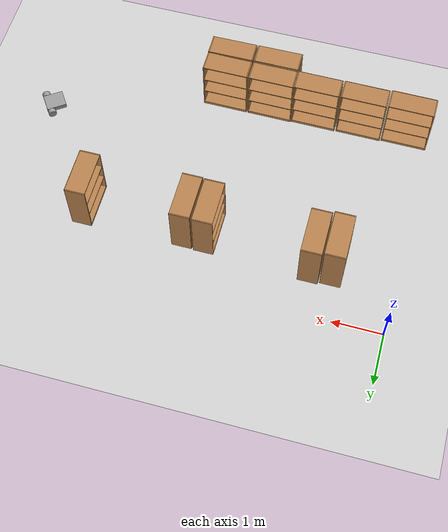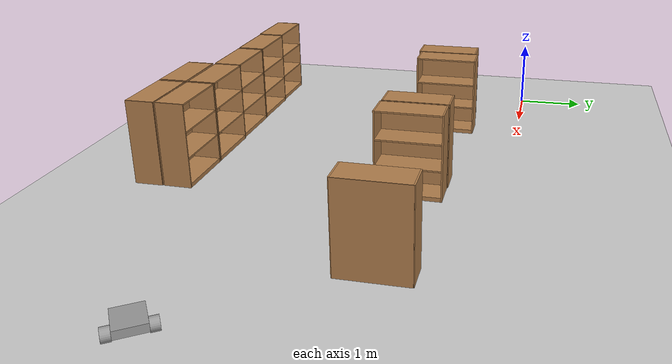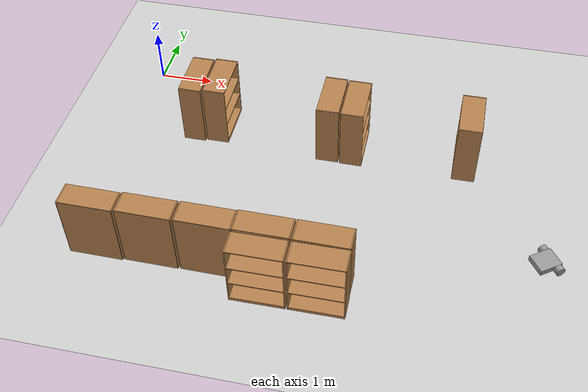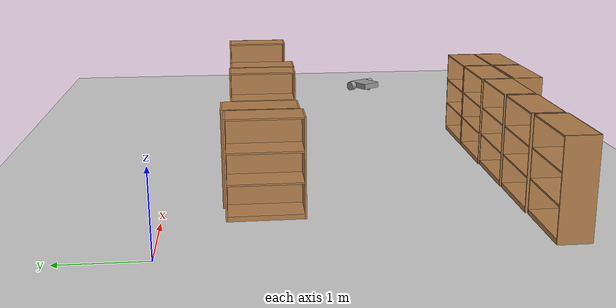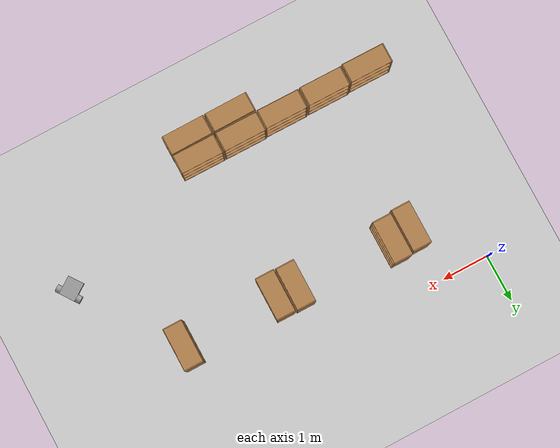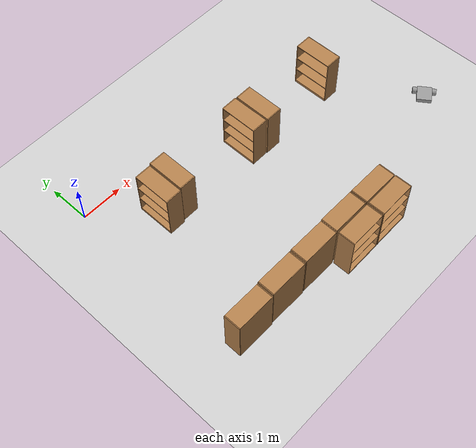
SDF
<sdf version="1.6">
 <world name="default">
  <model name="ground_plane">
   <static>1</static>
   <link name="link">
    <collision name="collision">
     <geometry><plane><normal>0 0 1</normal><size>100 100</size></plane></geometry>
     <surface>
      <contact><collide_bitmask>65535</collide_bitmask></contact>
      <friction><ode><mu>100</mu><mu2>50</mu2></ode></friction>
     </surface>
    </collision>
    <visual name="visual">
     <cast_shadows>0</cast_shadows>
     <geometry><plane><normal>0 0 1</normal><size>100 100</size></plane></geometry>
     <material>
      <script><uri>file://media/materials/scripts/gazebo.material</uri><name>Gazebo/Grey</name></script>
     </material>
    </visual>
   </link>
  </model>
  <model name="CasterWheelRobot">
   <link name="link_2">
    <pose>0.03 0 0.025 0 -0 0</pose>
    <inertial>
     <mass>0.0155432</mass>
     <inertia>
      <ixx>0.0001924</ixx>
      <ixy>0</ixy>
      <ixz>0</ixz>
      <iyy>0.0002189</iyy>
      <iyz>0</iyz>
      <izz>0.00038243</izz>
     </inertia>
    </inertial>
    <visual name="visual">
     <geometry><box><size>0.4 0.35 0.1</size></box></geometry>
     <material>
      <lighting>1</lighting>
      <script><uri>file://media/materials/scripts/gazebo.material</uri><name>Gazebo/Grey</name></script>
      <shader type="pixel"><normal_map>__default__</normal_map></shader>
      <ambient>0.3 0.3 0.3 1</ambient>
      <diffuse>0.7 0.7 0.7 1</diffuse>
      <specular>0.01 0.01 0.01 1</specular>
      <emissive>0 0 0 1</emissive>
     </material>
    </visual>
    <collision name="collision">
     <geometry><box><size>0.4 0.35 0.1</size></box></geometry>
     <surface>
      <friction>
       <ode><mu>1</mu><mu2>1</mu2><fdir1>0 0 0</fdir1><slip1>0</slip1><slip2>0</slip2></ode>
       <torsional>
        <coefficient>1</coefficient>
        <patch_radius>0</patch_radius>
        <surface_radius>0</surface_radius>
        <use_patch_radius>1</use_patch_radius>
        <ode><slip>0</slip></ode>
       </torsional>
      </friction>
      <bounce><restitution_coefficient>0</restitution_coefficient><threshold>1e+06</threshold></bounce>
      <contact>
       <collide_without_contact>0</collide_without_contact>
       <collide_without_contact_bitmask>1</collide_without_contact_bitmask>
       <collide_bitmask>1</collide_bitmask>
       <ode>
        <soft_cfm>0</soft_cfm>
        <soft_erp>0.2</soft_erp>
        <kp>1e+13</kp>
        <kd>1</kd>
        <max_vel>0.01</max_vel>
        <min_depth>0</min_depth>
       </ode>
       <bullet>
        <split_impulse>1</split_impulse>
        <split_impulse_penetration_threshold>-0.01</split_impulse_penetration_threshold>
        <soft_cfm>0</soft_cfm>
        <soft_erp>0.2</soft_erp>
        <kp>1e+13</kp>
        <kd>1</kd>
       </bullet>
      </contact>
     </surface>
    </collision>
   </link>
   <link name="link_3">
    <pose>-0.09 -0.225013 0.005 1.5707 -0 0</pose>
    <inertial>
     <mass>1</mass>
     <inertia><ixx>0.145833</ixx><ixy>0</ixy><ixz>0</ixz><iyy>0.145833</iyy><iyz>0</iyz><izz>0.125</izz></inertia>
    </inertial>
    <visual name="visual">
     <geometry><cylinder><radius>0.08</radius><length>0.1</length></cylinder></geometry>
     <material>
      <lighting>1</lighting>
      <script><uri>file://media/materials/scripts/gazebo.material</uri><name>Gazebo/Grey</name></script>
      <shader type="pixel"><normal_map>__default__</normal_map></shader>
      <ambient>0.3 0.3 0.3 1</ambient>
      <diffuse>0.7 0.7 0.7 1</diffuse>
      <specular>0.01 0.01 0.01 1</specular>
      <emissive>0 0 0 1</emissive>
     </material>
    </visual>
    <collision name="collision">
     <geometry><cylinder><radius>0.08</radius><length>0.1</length></cylinder></geometry>
     <surface>
      <friction>
       <ode><mu>1</mu><mu2>1</mu2><fdir1>0 0 0</fdir1><slip1>0</slip1><slip2>0</slip2></ode>
       <torsional>
        <coefficient>1</coefficient>
        <patch_radius>0</patch_radius>
        <surface_radius>0</surface_radius>
        <use_patch_radius>1</use_patch_radius>
        <ode><slip>0</slip></ode>
       </torsional>
      </friction>
      <bounce><restitution_coefficient>0</restitution_coefficient><threshold>1e+06</threshold></bounce>
      <contact>
       <collide_without_contact>0</collide_without_contact>
       <collide_without_contact_bitmask>1</collide_without_contact_bitmask>
       <collide_bitmask>1</collide_bitmask>
       <ode>
        <soft_cfm>0</soft_cfm>
        <soft_erp>0.2</soft_erp>
        <kp>1e+13</kp>
        <kd>1</kd>
        <max_vel>0.01</max_vel>
        <min_depth>0</min_depth>
       </ode>
       <bullet>
        <split_impulse>1</split_impulse>
        <split_impulse_penetration_threshold>-0.01</split_impulse_penetration_threshold>
        <soft_cfm>0</soft_cfm>
        <soft_erp>0.2</soft_erp>
        <kp>1e+13</kp>
        <kd>1</kd>
       </bullet>
      </contact>
     </surface>
    </collision>
   </link>
   <link name="link_3_clone">
    <pose>-0.09 0.225008 0.005 -1.5707 0 0</pose>
    <inertial>
     <mass>1</mass>
     <inertia><ixx>0.145833</ixx><ixy>0</ixy><ixz>0</ixz><iyy>0.145833</iyy><iyz>0</iyz><izz>0.125</izz></inertia>
    </inertial>
    <visual name="visual">
     <geometry><cylinder><radius>0.08</radius><length>0.1</length></cylinder></geometry>
     <material>
      <lighting>1</lighting>
      <script><uri>file://media/materials/scripts/gazebo.material</uri><name>Gazebo/Grey</name></script>
      <shader type="pixel"><normal_map>__default__</normal_map></shader>
      <ambient>0.3 0.3 0.3 1</ambient>
      <diffuse>0.7 0.7 0.7 1</diffuse>
      <specular>0.01 0.01 0.01 1</specular>
      <emissive>0 0 0 1</emissive>
     </material>
    </visual>
    <collision name="collision">
     <geometry><cylinder><radius>0.08</radius><length>0.1</length></cylinder></geometry>
     <surface>
      <friction>
       <ode><mu>1</mu><mu2>1</mu2><fdir1>0 0 0</fdir1><slip1>0</slip1><slip2>0</slip2></ode>
       <torsional>
        <coefficient>1</coefficient>
        <patch_radius>0</patch_radius>
        <surface_radius>0</surface_radius>
        <use_patch_radius>1</use_patch_radius>
        <ode><slip>0</slip></ode>
       </torsional>
      </friction>
      <bounce><restitution_coefficient>0</restitution_coefficient><threshold>1e+06</threshold></bounce>
      <contact>
       <collide_without_contact>0</collide_without_contact>
       <collide_without_contact_bitmask>1</collide_without_contact_bitmask>
       <collide_bitmask>1</collide_bitmask>
       <ode>
        <soft_cfm>0</soft_cfm>
        <soft_erp>0.2</soft_erp>
        <kp>1e+13</kp>
        <kd>1</kd>
        <max_vel>0.01</max_vel>
        <min_depth>0</min_depth>
       </ode>
       <bullet>
        <split_impulse>1</split_impulse>
        <split_impulse_penetration_threshold>-0.01</split_impulse_penetration_threshold>
        <soft_cfm>0</soft_cfm>
        <soft_erp>0.2</soft_erp>
        <kp>1e+13</kp>
        <kd>1</kd>
       </bullet>
      </contact>
     </surface>
    </collision>
   </link>
   <link name="link_4">
    <pose>0.15 0 -0.035 0 -0 0</pose>
    <inertial>
     <mass>0.00336129</mass>
     <inertia>
      <ixx>7.54e-06</ixx>
      <ixy>0</ixy>
      <ixz>0</ixz>
      <iyy>7.54e-06</iyy>
      <iyz>0</iyz>
      <izz>7.54e-06</izz>
     </inertia>
    </inertial>
    <visual name="visual">
     <geometry><sphere><radius>0.04</radius></sphere></geometry>
     <material>
      <lighting>1</lighting>
      <script><uri>file://media/materials/scripts/gazebo.material</uri><name>Gazebo/Grey</name></script>
      <shader type="pixel"><normal_map>__default__</normal_map></shader>
      <ambient>0.3 0.3 0.3 1</ambient>
      <diffuse>0.7 0.7 0.7 1</diffuse>
      <specular>0.01 0.01 0.01 1</specular>
      <emissive>0 0 0 1</emissive>
     </material>
    </visual>
    <collision name="collision">
     <geometry><sphere><radius>0.04</radius></sphere></geometry>
     <surface>
      <friction>
       <ode><mu>1</mu><mu2>1</mu2><fdir1>0 0 0</fdir1><slip1>0</slip1><slip2>0</slip2></ode>
       <torsional>
        <coefficient>1</coefficient>
        <patch_radius>0</patch_radius>
        <surface_radius>0</surface_radius>
        <use_patch_radius>1</use_patch_radius>
        <ode><slip>0</slip></ode>
       </torsional>
      </friction>
      <bounce><restitution_coefficient>0</restitution_coefficient><threshold>1e+06</threshold></bounce>
      <contact>
       <collide_without_contact>0</collide_without_contact>
       <collide_without_contact_bitmask>1</collide_without_contact_bitmask>
       <collide_bitmask>1</collide_bitmask>
       <ode>
        <soft_cfm>0</soft_cfm>
        <soft_erp>0.2</soft_erp>
        <kp>1e+13</kp>
        <kd>1</kd>
        <max_vel>0.01</max_vel>
        <min_depth>0</min_depth>
       </ode>
       <bullet>
        <split_impulse>1</split_impulse>
        <split_impulse_penetration_threshold>-0.01</split_impulse_penetration_threshold>
        <soft_cfm>0</soft_cfm>
        <soft_erp>0.2</soft_erp>
        <kp>1e+13</kp>
        <kd>1</kd>
       </bullet>
      </contact>
     </surface>
    </collision>
   </link>
   <joint name="link_2_JOINT_10" type="ball">
    <parent>link_2</parent>
    <child>link_4</child>
    <physics>
     <ode><limit><cfm>0</cfm><erp>0.2</erp></limit><suspension><cfm>0</cfm><erp>0.2</erp></suspension></ode>
    </physics>
   </joint>
   <joint name="link_2_JOINT_8" type="revolute">
    <parent>link_2</parent>
    <child>link_3</child>
    <axis>
     <xyz>0 0 1</xyz>
     <use_parent_model_frame>0</use_parent_model_frame>
     <limit>
      <lower>-1.79769e+308</lower>
      <upper>1.79769e+308</upper>
      <effort>-1</effort>
      <velocity>-1</velocity>
     </limit>
     <dynamics>
      <spring_reference>0</spring_reference>
      <spring_stiffness>0</spring_stiffness>
      <damping>0</damping>
     </dynamics>
    </axis>
    <physics>
     <ode><limit><cfm>0</cfm><erp>0.2</erp></limit><suspension><cfm>0</cfm><erp>0.2</erp></suspension></ode>
    </physics>
   </joint>
   <joint name="link_2_JOINT_9" type="revolute">
    <parent>link_2</parent>
    <child>link_3_clone</child>
    <axis>
     <xyz>0 0 1</xyz>
     <use_parent_model_frame>0</use_parent_model_frame>
     <limit>
      <lower>-1.79769e+308</lower>
      <upper>1.79769e+308</upper>
      <effort>-1</effort>
      <velocity>-1</velocity>
     </limit>
     <dynamics>
      <spring_reference>0</spring_reference>
      <spring_stiffness>0</spring_stiffness>
      <damping>0</damping>
     </dynamics>
    </axis>
    <physics>
     <ode><limit><cfm>0</cfm><erp>0.2</erp></limit><suspension><cfm>0</cfm><erp>0.2</erp></suspension></ode>
    </physics>
   </joint>
   <static>0</static>
   <pose>7.64571 -3.31094 0.074993 5.9e-05 -4.4e-05 -2.53326</pose>
  </model>
  <model name="bookshelf_clone_38">
   <static>1</static>
   <link name="link">
    <inertial><mass>1</mass></inertial>
    <collision name="back">
     <pose>0 0.005 0.6 0 -0 0</pose>
     <geometry><box><size>0.9 0.01 1.2</size></box></geometry>
    </collision>
    <visual name="visual1">
     <pose>0 0.005 0.6 0 -0 0</pose>
     <geometry><box><size>0.9 0.01 1.2</size></box></geometry>
     <material>
      <script><uri>file://media/materials/scripts/gazebo.material</uri><name>Gazebo/Wood</name></script>
     </material>
    </visual>
    <collision name="left_side">
     <pose>0.45 -0.195 0.6 0 -0 0</pose>
     <geometry><box><size>0.02 0.4 1.2</size></box></geometry>
    </collision>
    <visual name="visual2">
     <pose>0.45 -0.195 0.6 0 -0 0</pose>
     <geometry><box><size>0.02 0.4 1.2</size></box></geometry>
     <material>
      <script><uri>file://media/materials/scripts/gazebo.material</uri><name>Gazebo/Wood</name></script>
     </material>
    </visual>
    <collision name="right_side">
     <pose>-0.45 -0.195 0.6 0 -0 0</pose>
     <geometry><box><size>0.02 0.4 1.2</size></box></geometry>
    </collision>
    <visual name="visual3">
     <pose>-0.45 -0.195 0.6 0 -0 0</pose>
     <geometry><box><size>0.02 0.4 1.2</size></box></geometry>
     <material>
      <script><uri>file://media/materials/scripts/gazebo.material</uri><name>Gazebo/Wood</name></script>
     </material>
    </visual>
    <collision name="bottom">
     <pose>0 -0.195 0.03 0 -0 0</pose>
     <geometry><box><size>0.88 0.4 0.06</size></box></geometry>
    </collision>
    <visual name="visual4">
     <pose>0 -0.195 0.03 0 -0 0</pose>
     <geometry><box><size>0.88 0.4 0.06</size></box></geometry>
     <material>
      <script><uri>file://media/materials/scripts/gazebo.material</uri><name>Gazebo/Wood</name></script>
     </material>
    </visual>
    <collision name="top">
     <pose>0 -0.195 1.19 0 -0 0</pose>
     <geometry><box><size>0.88 0.4 0.02</size></box></geometry>
    </collision>
    <visual name="visual5">
     <pose>0 -0.195 1.19 0 -0 0</pose>
     <geometry><box><size>0.88 0.4 0.02</size></box></geometry>
     <material>
      <script><uri>file://media/materials/scripts/gazebo.material</uri><name>Gazebo/Wood</name></script>
     </material>
    </visual>
    <collision name="low_shelf">
     <pose>0 -0.195 0.43 0 -0 0</pose>
     <geometry><box><size>0.88 0.4 0.02</size></box></geometry>
    </collision>
    <visual name="visual6">
     <pose>0 -0.195 0.43 0 -0 0</pose>
     <geometry><box><size>0.88 0.4 0.02</size></box></geometry>
     <material>
      <script><uri>file://media/materials/scripts/gazebo.material</uri><name>Gazebo/Wood</name></script>
     </material>
    </visual>
    <collision name="high_shelf">
     <pose>0 -0.195 0.8 0 -0 0</pose>
     <geometry><box><size>0.88 0.4 0.02</size></box></geometry>
    </collision>
    <visual name="visual7">
     <pose>0 -0.195 0.8 0 -0 0</pose>
     <geometry><box><size>0.88 0.4 0.02</size></box></geometry>
     <material>
      <script><uri>file://media/materials/scripts/gazebo.material</uri><name>Gazebo/Wood</name></script>
     </material>
    </visual>
   </link>
   <pose>4.17204 -4.61435 0 0 -0 0.005938</pose>
  </model>
  <model name="bookshelf_clone_39">
   <static>1</static>
   <link name="link">
    <inertial><mass>1</mass></inertial>
    <collision name="back">
     <pose>0 0.005 0.6 0 -0 0</pose>
     <geometry><box><size>0.9 0.01 1.2</size></box></geometry>
    </collision>
    <visual name="visual1">
     <pose>0 0.005 0.6 0 -0 0</pose>
     <geometry><box><size>0.9 0.01 1.2</size></box></geometry>
     <material>
      <script><uri>file://media/materials/scripts/gazebo.material</uri><name>Gazebo/Wood</name></script>
     </material>
    </visual>
    <collision name="left_side">
     <pose>0.45 -0.195 0.6 0 -0 0</pose>
     <geometry><box><size>0.02 0.4 1.2</size></box></geometry>
    </collision>
    <visual name="visual2">
     <pose>0.45 -0.195 0.6 0 -0 0</pose>
     <geometry><box><size>0.02 0.4 1.2</size></box></geometry>
     <material>
      <script><uri>file://media/materials/scripts/gazebo.material</uri><name>Gazebo/Wood</name></script>
     </material>
    </visual>
    <collision name="right_side">
     <pose>-0.45 -0.195 0.6 0 -0 0</pose>
     <geometry><box><size>0.02 0.4 1.2</size></box></geometry>
    </collision>
    <visual name="visual3">
     <pose>-0.45 -0.195 0.6 0 -0 0</pose>
     <geometry><box><size>0.02 0.4 1.2</size></box></geometry>
     <material>
      <script><uri>file://media/materials/scripts/gazebo.material</uri><name>Gazebo/Wood</name></script>
     </material>
    </visual>
    <collision name="bottom">
     <pose>0 -0.195 0.03 0 -0 0</pose>
     <geometry><box><size>0.88 0.4 0.06</size></box></geometry>
    </collision>
    <visual name="visual4">
     <pose>0 -0.195 0.03 0 -0 0</pose>
     <geometry><box><size>0.88 0.4 0.06</size></box></geometry>
     <material>
      <script><uri>file://media/materials/scripts/gazebo.material</uri><name>Gazebo/Wood</name></script>
     </material>
    </visual>
    <collision name="top">
     <pose>0 -0.195 1.19 0 -0 0</pose>
     <geometry><box><size>0.88 0.4 0.02</size></box></geometry>
    </collision>
    <visual name="visual5">
     <pose>0 -0.195 1.19 0 -0 0</pose>
     <geometry><box><size>0.88 0.4 0.02</size></box></geometry>
     <material>
      <script><uri>file://media/materials/scripts/gazebo.material</uri><name>Gazebo/Wood</name></script>
     </material>
    </visual>
    <collision name="low_shelf">
     <pose>0 -0.195 0.43 0 -0 0</pose>
     <geometry><box><size>0.88 0.4 0.02</size></box></geometry>
    </collision>
    <visual name="visual6">
     <pose>0 -0.195 0.43 0 -0 0</pose>
     <geometry><box><size>0.88 0.4 0.02</size></box></geometry>
     <material>
      <script><uri>file://media/materials/scripts/gazebo.material</uri><name>Gazebo/Wood</name></script>
     </material>
    </visual>
    <collision name="high_shelf">
     <pose>0 -0.195 0.8 0 -0 0</pose>
     <geometry><box><size>0.88 0.4 0.02</size></box></geometry>
    </collision>
    <visual name="visual7">
     <pose>0 -0.195 0.8 0 -0 0</pose>
     <geometry><box><size>0.88 0.4 0.02</size></box></geometry>
     <material>
      <script><uri>file://media/materials/scripts/gazebo.material</uri><name>Gazebo/Wood</name></script>
     </material>
    </visual>
   </link>
   <pose>3.22638 -4.62218 0 0 -0 0.005938</pose>
  </model>
  <model name="bookshelf_clone_44">
   <static>1</static>
   <link name="link">
    <inertial><mass>1</mass></inertial>
    <collision name="back">
     <pose>0 0.005 0.6 0 -0 0</pose>
     <geometry><box><size>0.9 0.01 1.2</size></box></geometry>
    </collision>
    <visual name="visual1">
     <pose>0 0.005 0.6 0 -0 0</pose>
     <geometry><box><size>0.9 0.01 1.2</size></box></geometry>
     <material>
      <script><uri>file://media/materials/scripts/gazebo.material</uri><name>Gazebo/Wood</name></script>
     </material>
    </visual>
    <collision name="left_side">
     <pose>0.45 -0.195 0.6 0 -0 0</pose>
     <geometry><box><size>0.02 0.4 1.2</size></box></geometry>
    </collision>
    <visual name="visual2">
     <pose>0.45 -0.195 0.6 0 -0 0</pose>
     <geometry><box><size>0.02 0.4 1.2</size></box></geometry>
     <material>
      <script><uri>file://media/materials/scripts/gazebo.material</uri><name>Gazebo/Wood</name></script>
     </material>
    </visual>
    <collision name="right_side">
     <pose>-0.45 -0.195 0.6 0 -0 0</pose>
     <geometry><box><size>0.02 0.4 1.2</size></box></geometry>
    </collision>
    <visual name="visual3">
     <pose>-0.45 -0.195 0.6 0 -0 0</pose>
     <geometry><box><size>0.02 0.4 1.2</size></box></geometry>
     <material>
      <script><uri>file://media/materials/scripts/gazebo.material</uri><name>Gazebo/Wood</name></script>
     </material>
    </visual>
    <collision name="bottom">
     <pose>0 -0.195 0.03 0 -0 0</pose>
     <geometry><box><size>0.88 0.4 0.06</size></box></geometry>
    </collision>
    <visual name="visual4">
     <pose>0 -0.195 0.03 0 -0 0</pose>
     <geometry><box><size>0.88 0.4 0.06</size></box></geometry>
     <material>
      <script><uri>file://media/materials/scripts/gazebo.material</uri><name>Gazebo/Wood</name></script>
     </material>
    </visual>
    <collision name="top">
     <pose>0 -0.195 1.19 0 -0 0</pose>
     <geometry><box><size>0.88 0.4 0.02</size></box></geometry>
    </collision>
    <visual name="visual5">
     <pose>0 -0.195 1.19 0 -0 0</pose>
     <geometry><box><size>0.88 0.4 0.02</size></box></geometry>
     <material>
      <script><uri>file://media/materials/scripts/gazebo.material</uri><name>Gazebo/Wood</name></script>
     </material>
    </visual>
    <collision name="low_shelf">
     <pose>0 -0.195 0.43 0 -0 0</pose>
     <geometry><box><size>0.88 0.4 0.02</size></box></geometry>
    </collision>
    <visual name="visual6">
     <pose>0 -0.195 0.43 0 -0 0</pose>
     <geometry><box><size>0.88 0.4 0.02</size></box></geometry>
     <material>
      <script><uri>file://media/materials/scripts/gazebo.material</uri><name>Gazebo/Wood</name></script>
     </material>
    </visual>
    <collision name="high_shelf">
     <pose>0 -0.195 0.8 0 -0 0</pose>
     <geometry><box><size>0.88 0.4 0.02</size></box></geometry>
    </collision>
    <visual name="visual7">
     <pose>0 -0.195 0.8 0 -0 0</pose>
     <geometry><box><size>0.88 0.4 0.02</size></box></geometry>
     <material>
      <script><uri>file://media/materials/scripts/gazebo.material</uri><name>Gazebo/Wood</name></script>
     </material>
    </visual>
   </link>
   <pose>4.16633 -4.5747 0 0 -0 3.13561</pose>
  </model>
  <model name="bookshelf_clone_45">
   <static>1</static>
   <link name="link">
    <inertial><mass>1</mass></inertial>
    <collision name="back">
     <pose>0 0.005 0.6 0 -0 0</pose>
     <geometry><box><size>0.9 0.01 1.2</size></box></geometry>
    </collision>
    <visual name="visual1">
     <pose>0 0.005 0.6 0 -0 0</pose>
     <geometry><box><size>0.9 0.01 1.2</size></box></geometry>
     <material>
      <script><uri>file://media/materials/scripts/gazebo.material</uri><name>Gazebo/Wood</name></script>
     </material>
    </visual>
    <collision name="left_side">
     <pose>0.45 -0.195 0.6 0 -0 0</pose>
     <geometry><box><size>0.02 0.4 1.2</size></box></geometry>
    </collision>
    <visual name="visual2">
     <pose>0.45 -0.195 0.6 0 -0 0</pose>
     <geometry><box><size>0.02 0.4 1.2</size></box></geometry>
     <material>
      <script><uri>file://media/materials/scripts/gazebo.material</uri><name>Gazebo/Wood</name></script>
     </material>
    </visual>
    <collision name="right_side">
     <pose>-0.45 -0.195 0.6 0 -0 0</pose>
     <geometry><box><size>0.02 0.4 1.2</size></box></geometry>
    </collision>
    <visual name="visual3">
     <pose>-0.45 -0.195 0.6 0 -0 0</pose>
     <geometry><box><size>0.02 0.4 1.2</size></box></geometry>
     <material>
      <script><uri>file://media/materials/scripts/gazebo.material</uri><name>Gazebo/Wood</name></script>
     </material>
    </visual>
    <collision name="bottom">
     <pose>0 -0.195 0.03 0 -0 0</pose>
     <geometry><box><size>0.88 0.4 0.06</size></box></geometry>
    </collision>
    <visual name="visual4">
     <pose>0 -0.195 0.03 0 -0 0</pose>
     <geometry><box><size>0.88 0.4 0.06</size></box></geometry>
     <material>
      <script><uri>file://media/materials/scripts/gazebo.material</uri><name>Gazebo/Wood</name></script>
     </material>
    </visual>
    <collision name="top">
     <pose>0 -0.195 1.19 0 -0 0</pose>
     <geometry><box><size>0.88 0.4 0.02</size></box></geometry>
    </collision>
    <visual name="visual5">
     <pose>0 -0.195 1.19 0 -0 0</pose>
     <geometry><box><size>0.88 0.4 0.02</size></box></geometry>
     <material>
      <script><uri>file://media/materials/scripts/gazebo.material</uri><name>Gazebo/Wood</name></script>
     </material>
    </visual>
    <collision name="low_shelf">
     <pose>0 -0.195 0.43 0 -0 0</pose>
     <geometry><box><size>0.88 0.4 0.02</size></box></geometry>
    </collision>
    <visual name="visual6">
     <pose>0 -0.195 0.43 0 -0 0</pose>
     <geometry><box><size>0.88 0.4 0.02</size></box></geometry>
     <material>
      <script><uri>file://media/materials/scripts/gazebo.material</uri><name>Gazebo/Wood</name></script>
     </material>
    </visual>
    <collision name="high_shelf">
     <pose>0 -0.195 0.8 0 -0 0</pose>
     <geometry><box><size>0.88 0.4 0.02</size></box></geometry>
    </collision>
    <visual name="visual7">
     <pose>0 -0.195 0.8 0 -0 0</pose>
     <geometry><box><size>0.88 0.4 0.02</size></box></geometry>
     <material>
      <script><uri>file://media/materials/scripts/gazebo.material</uri><name>Gazebo/Wood</name></script>
     </material>
    </visual>
   </link>
   <pose>3.22636 -4.57112 0 0 -0 3.13561</pose>
  </model>
  <model name="bookshelf_clone_46">
   <static>1</static>
   <link name="link">
    <inertial><mass>1</mass></inertial>
    <collision name="back">
     <pose>0 0.005 0.6 0 -0 0</pose>
     <geometry><box><size>0.9 0.01 1.2</size></box></geometry>
    </collision>
    <visual name="visual1">
     <pose>0 0.005 0.6 0 -0 0</pose>
     <geometry><box><size>0.9 0.01 1.2</size></box></geometry>
     <material>
      <script><uri>file://media/materials/scripts/gazebo.material</uri><name>Gazebo/Wood</name></script>
     </material>
    </visual>
    <collision name="left_side">
     <pose>0.45 -0.195 0.6 0 -0 0</pose>
     <geometry><box><size>0.02 0.4 1.2</size></box></geometry>
    </collision>
    <visual name="visual2">
     <pose>0.45 -0.195 0.6 0 -0 0</pose>
     <geometry><box><size>0.02 0.4 1.2</size></box></geometry>
     <material>
      <script><uri>file://media/materials/scripts/gazebo.material</uri><name>Gazebo/Wood</name></script>
     </material>
    </visual>
    <collision name="right_side">
     <pose>-0.45 -0.195 0.6 0 -0 0</pose>
     <geometry><box><size>0.02 0.4 1.2</size></box></geometry>
    </collision>
    <visual name="visual3">
     <pose>-0.45 -0.195 0.6 0 -0 0</pose>
     <geometry><box><size>0.02 0.4 1.2</size></box></geometry>
     <material>
      <script><uri>file://media/materials/scripts/gazebo.material</uri><name>Gazebo/Wood</name></script>
     </material>
    </visual>
    <collision name="bottom">
     <pose>0 -0.195 0.03 0 -0 0</pose>
     <geometry><box><size>0.88 0.4 0.06</size></box></geometry>
    </collision>
    <visual name="visual4">
     <pose>0 -0.195 0.03 0 -0 0</pose>
     <geometry><box><size>0.88 0.4 0.06</size></box></geometry>
     <material>
      <script><uri>file://media/materials/scripts/gazebo.material</uri><name>Gazebo/Wood</name></script>
     </material>
    </visual>
    <collision name="top">
     <pose>0 -0.195 1.19 0 -0 0</pose>
     <geometry><box><size>0.88 0.4 0.02</size></box></geometry>
    </collision>
    <visual name="visual5">
     <pose>0 -0.195 1.19 0 -0 0</pose>
     <geometry><box><size>0.88 0.4 0.02</size></box></geometry>
     <material>
      <script><uri>file://media/materials/scripts/gazebo.material</uri><name>Gazebo/Wood</name></script>
     </material>
    </visual>
    <collision name="low_shelf">
     <pose>0 -0.195 0.43 0 -0 0</pose>
     <geometry><box><size>0.88 0.4 0.02</size></box></geometry>
    </collision>
    <visual name="visual6">
     <pose>0 -0.195 0.43 0 -0 0</pose>
     <geometry><box><size>0.88 0.4 0.02</size></box></geometry>
     <material>
      <script><uri>file://media/materials/scripts/gazebo.material</uri><name>Gazebo/Wood</name></script>
     </material>
    </visual>
    <collision name="high_shelf">
     <pose>0 -0.195 0.8 0 -0 0</pose>
     <geometry><box><size>0.88 0.4 0.02</size></box></geometry>
    </collision>
    <visual name="visual7">
     <pose>0 -0.195 0.8 0 -0 0</pose>
     <geometry><box><size>0.88 0.4 0.02</size></box></geometry>
     <material>
      <script><uri>file://media/materials/scripts/gazebo.material</uri><name>Gazebo/Wood</name></script>
     </material>
    </visual>
   </link>
   <pose>2.30219 -4.58339 0 0 -0 3.13561</pose>
  </model>
  <model name="bookshelf_clone_47">
   <static>1</static>
   <link name="link">
    <inertial><mass>1</mass></inertial>
    <collision name="back">
     <pose>0 0.005 0.6 0 -0 0</pose>
     <geometry><box><size>0.9 0.01 1.2</size></box></geometry>
    </collision>
    <visual name="visual1">
     <pose>0 0.005 0.6 0 -0 0</pose>
     <geometry><box><size>0.9 0.01 1.2</size></box></geometry>
     <material>
      <script><uri>file://media/materials/scripts/gazebo.material</uri><name>Gazebo/Wood</name></script>
     </material>
    </visual>
    <collision name="left_side">
     <pose>0.45 -0.195 0.6 0 -0 0</pose>
     <geometry><box><size>0.02 0.4 1.2</size></box></geometry>
    </collision>
    <visual name="visual2">
     <pose>0.45 -0.195 0.6 0 -0 0</pose>
     <geometry><box><size>0.02 0.4 1.2</size></box></geometry>
     <material>
      <script><uri>file://media/materials/scripts/gazebo.material</uri><name>Gazebo/Wood</name></script>
     </material>
    </visual>
    <collision name="right_side">
     <pose>-0.45 -0.195 0.6 0 -0 0</pose>
     <geometry><box><size>0.02 0.4 1.2</size></box></geometry>
    </collision>
    <visual name="visual3">
     <pose>-0.45 -0.195 0.6 0 -0 0</pose>
     <geometry><box><size>0.02 0.4 1.2</size></box></geometry>
     <material>
      <script><uri>file://media/materials/scripts/gazebo.material</uri><name>Gazebo/Wood</name></script>
     </material>
    </visual>
    <collision name="bottom">
     <pose>0 -0.195 0.03 0 -0 0</pose>
     <geometry><box><size>0.88 0.4 0.06</size></box></geometry>
    </collision>
    <visual name="visual4">
     <pose>0 -0.195 0.03 0 -0 0</pose>
     <geometry><box><size>0.88 0.4 0.06</size></box></geometry>
     <material>
      <script><uri>file://media/materials/scripts/gazebo.material</uri><name>Gazebo/Wood</name></script>
     </material>
    </visual>
    <collision name="top">
     <pose>0 -0.195 1.19 0 -0 0</pose>
     <geometry><box><size>0.88 0.4 0.02</size></box></geometry>
    </collision>
    <visual name="visual5">
     <pose>0 -0.195 1.19 0 -0 0</pose>
     <geometry><box><size>0.88 0.4 0.02</size></box></geometry>
     <material>
      <script><uri>file://media/materials/scripts/gazebo.material</uri><name>Gazebo/Wood</name></script>
     </material>
    </visual>
    <collision name="low_shelf">
     <pose>0 -0.195 0.43 0 -0 0</pose>
     <geometry><box><size>0.88 0.4 0.02</size></box></geometry>
    </collision>
    <visual name="visual6">
     <pose>0 -0.195 0.43 0 -0 0</pose>
     <geometry><box><size>0.88 0.4 0.02</size></box></geometry>
     <material>
      <script><uri>file://media/materials/scripts/gazebo.material</uri><name>Gazebo/Wood</name></script>
     </material>
    </visual>
    <collision name="high_shelf">
     <pose>0 -0.195 0.8 0 -0 0</pose>
     <geometry><box><size>0.88 0.4 0.02</size></box></geometry>
    </collision>
    <visual name="visual7">
     <pose>0 -0.195 0.8 0 -0 0</pose>
     <geometry><box><size>0.88 0.4 0.02</size></box></geometry>
     <material>
      <script><uri>file://media/materials/scripts/gazebo.material</uri><name>Gazebo/Wood</name></script>
     </material>
    </visual>
   </link>
   <pose>1.35273 -4.58749 0 0 -0 3.13561</pose>
  </model>
  <model name="bookshelf_clone_48">
   <static>1</static>
   <link name="link">
    <inertial><mass>1</mass></inertial>
    <collision name="back">
     <pose>0 0.005 0.6 0 -0 0</pose>
     <geometry><box><size>0.9 0.01 1.2</size></box></geometry>
    </collision>
    <visual name="visual1">
     <pose>0 0.005 0.6 0 -0 0</pose>
     <geometry><box><size>0.9 0.01 1.2</size></box></geometry>
     <material>
      <script><uri>file://media/materials/scripts/gazebo.material</uri><name>Gazebo/Wood</name></script>
     </material>
    </visual>
    <collision name="left_side">
     <pose>0.45 -0.195 0.6 0 -0 0</pose>
     <geometry><box><size>0.02 0.4 1.2</size></box></geometry>
    </collision>
    <visual name="visual2">
     <pose>0.45 -0.195 0.6 0 -0 0</pose>
     <geometry><box><size>0.02 0.4 1.2</size></box></geometry>
     <material>
      <script><uri>file://media/materials/scripts/gazebo.material</uri><name>Gazebo/Wood</name></script>
     </material>
    </visual>
    <collision name="right_side">
     <pose>-0.45 -0.195 0.6 0 -0 0</pose>
     <geometry><box><size>0.02 0.4 1.2</size></box></geometry>
    </collision>
    <visual name="visual3">
     <pose>-0.45 -0.195 0.6 0 -0 0</pose>
     <geometry><box><size>0.02 0.4 1.2</size></box></geometry>
     <material>
      <script><uri>file://media/materials/scripts/gazebo.material</uri><name>Gazebo/Wood</name></script>
     </material>
    </visual>
    <collision name="bottom">
     <pose>0 -0.195 0.03 0 -0 0</pose>
     <geometry><box><size>0.88 0.4 0.06</size></box></geometry>
    </collision>
    <visual name="visual4">
     <pose>0 -0.195 0.03 0 -0 0</pose>
     <geometry><box><size>0.88 0.4 0.06</size></box></geometry>
     <material>
      <script><uri>file://media/materials/scripts/gazebo.material</uri><name>Gazebo/Wood</name></script>
     </material>
    </visual>
    <collision name="top">
     <pose>0 -0.195 1.19 0 -0 0</pose>
     <geometry><box><size>0.88 0.4 0.02</size></box></geometry>
    </collision>
    <visual name="visual5">
     <pose>0 -0.195 1.19 0 -0 0</pose>
     <geometry><box><size>0.88 0.4 0.02</size></box></geometry>
     <material>
      <script><uri>file://media/materials/scripts/gazebo.material</uri><name>Gazebo/Wood</name></script>
     </material>
    </visual>
    <collision name="low_shelf">
     <pose>0 -0.195 0.43 0 -0 0</pose>
     <geometry><box><size>0.88 0.4 0.02</size></box></geometry>
    </collision>
    <visual name="visual6">
     <pose>0 -0.195 0.43 0 -0 0</pose>
     <geometry><box><size>0.88 0.4 0.02</size></box></geometry>
     <material>
      <script><uri>file://media/materials/scripts/gazebo.material</uri><name>Gazebo/Wood</name></script>
     </material>
    </visual>
    <collision name="high_shelf">
     <pose>0 -0.195 0.8 0 -0 0</pose>
     <geometry><box><size>0.88 0.4 0.02</size></box></geometry>
    </collision>
    <visual name="visual7">
     <pose>0 -0.195 0.8 0 -0 0</pose>
     <geometry><box><size>0.88 0.4 0.02</size></box></geometry>
     <material>
      <script><uri>file://media/materials/scripts/gazebo.material</uri><name>Gazebo/Wood</name></script>
     </material>
    </visual>
   </link>
   <pose>0.409863 -4.60292 0 0 -0 3.13561</pose>
  </model>
  <model name="bookshelf_clone_107">
   <static>1</static>
   <link name="link">
    <inertial><mass>1</mass></inertial>
    <collision name="back">
     <pose>0 0.005 0.6 0 -0 0</pose>
     <geometry><box><size>0.9 0.01 1.2</size></box></geometry>
    </collision>
    <visual name="visual1">
     <pose>0 0.005 0.6 0 -0 0</pose>
     <geometry><box><size>0.9 0.01 1.2</size></box></geometry>
     <material>
      <script><uri>file://media/materials/scripts/gazebo.material</uri><name>Gazebo/Wood</name></script>
     </material>
    </visual>
    <collision name="left_side">
     <pose>0.45 -0.195 0.6 0 -0 0</pose>
     <geometry><box><size>0.02 0.4 1.2</size></box></geometry>
    </collision>
    <visual name="visual2">
     <pose>0.45 -0.195 0.6 0 -0 0</pose>
     <geometry><box><size>0.02 0.4 1.2</size></box></geometry>
     <material>
      <script><uri>file://media/materials/scripts/gazebo.material</uri><name>Gazebo/Wood</name></script>
     </material>
    </visual>
    <collision name="right_side">
     <pose>-0.45 -0.195 0.6 0 -0 0</pose>
     <geometry><box><size>0.02 0.4 1.2</size></box></geometry>
    </collision>
    <visual name="visual3">
     <pose>-0.45 -0.195 0.6 0 -0 0</pose>
     <geometry><box><size>0.02 0.4 1.2</size></box></geometry>
     <material>
      <script><uri>file://media/materials/scripts/gazebo.material</uri><name>Gazebo/Wood</name></script>
     </material>
    </visual>
    <collision name="bottom">
     <pose>0 -0.195 0.03 0 -0 0</pose>
     <geometry><box><size>0.88 0.4 0.06</size></box></geometry>
    </collision>
    <visual name="visual4">
     <pose>0 -0.195 0.03 0 -0 0</pose>
     <geometry><box><size>0.88 0.4 0.06</size></box></geometry>
     <material>
      <script><uri>file://media/materials/scripts/gazebo.material</uri><name>Gazebo/Wood</name></script>
     </material>
    </visual>
    <collision name="top">
     <pose>0 -0.195 1.19 0 -0 0</pose>
     <geometry><box><size>0.88 0.4 0.02</size></box></geometry>
    </collision>
    <visual name="visual5">
     <pose>0 -0.195 1.19 0 -0 0</pose>
     <geometry><box><size>0.88 0.4 0.02</size></box></geometry>
     <material>
      <script><uri>file://media/materials/scripts/gazebo.material</uri><name>Gazebo/Wood</name></script>
     </material>
    </visual>
    <collision name="low_shelf">
     <pose>0 -0.195 0.43 0 -0 0</pose>
     <geometry><box><size>0.88 0.4 0.02</size></box></geometry>
    </collision>
    <visual name="visual6">
     <pose>0 -0.195 0.43 0 -0 0</pose>
     <geometry><box><size>0.88 0.4 0.02</size></box></geometry>
     <material>
      <script><uri>file://media/materials/scripts/gazebo.material</uri><name>Gazebo/Wood</name></script>
     </material>
    </visual>
    <collision name="high_shelf">
     <pose>0 -0.195 0.8 0 -0 0</pose>
     <geometry><box><size>0.88 0.4 0.02</size></box></geometry>
    </collision>
    <visual name="visual7">
     <pose>0 -0.195 0.8 0 -0 0</pose>
     <geometry><box><size>0.88 0.4 0.02</size></box></geometry>
     <material>
      <script><uri>file://media/materials/scripts/gazebo.material</uri><name>Gazebo/Wood</name></script>
     </material>
    </visual>
   </link>
   <pose>1.37176 -1.18796 0 0 0 -1.57004</pose>
  </model>
  <model name="bookshelf_clone_114">
   <static>1</static>
   <link name="link">
    <inertial><mass>1</mass></inertial>
    <collision name="back">
     <pose>0 0.005 0.6 0 -0 0</pose>
     <geometry><box><size>0.9 0.01 1.2</size></box></geometry>
    </collision>
    <visual name="visual1">
     <pose>0 0.005 0.6 0 -0 0</pose>
     <geometry><box><size>0.9 0.01 1.2</size></box></geometry>
     <material>
      <script><uri>file://media/materials/scripts/gazebo.material</uri><name>Gazebo/Wood</name></script>
     </material>
    </visual>
    <collision name="left_side">
     <pose>0.45 -0.195 0.6 0 -0 0</pose>
     <geometry><box><size>0.02 0.4 1.2</size></box></geometry>
    </collision>
    <visual name="visual2">
     <pose>0.45 -0.195 0.6 0 -0 0</pose>
     <geometry><box><size>0.02 0.4 1.2</size></box></geometry>
     <material>
      <script><uri>file://media/materials/scripts/gazebo.material</uri><name>Gazebo/Wood</name></script>
     </material>
    </visual>
    <collision name="right_side">
     <pose>-0.45 -0.195 0.6 0 -0 0</pose>
     <geometry><box><size>0.02 0.4 1.2</size></box></geometry>
    </collision>
    <visual name="visual3">
     <pose>-0.45 -0.195 0.6 0 -0 0</pose>
     <geometry><box><size>0.02 0.4 1.2</size></box></geometry>
     <material>
      <script><uri>file://media/materials/scripts/gazebo.material</uri><name>Gazebo/Wood</name></script>
     </material>
    </visual>
    <collision name="bottom">
     <pose>0 -0.195 0.03 0 -0 0</pose>
     <geometry><box><size>0.88 0.4 0.06</size></box></geometry>
    </collision>
    <visual name="visual4">
     <pose>0 -0.195 0.03 0 -0 0</pose>
     <geometry><box><size>0.88 0.4 0.06</size></box></geometry>
     <material>
      <script><uri>file://media/materials/scripts/gazebo.material</uri><name>Gazebo/Wood</name></script>
     </material>
    </visual>
    <collision name="top">
     <pose>0 -0.195 1.19 0 -0 0</pose>
     <geometry><box><size>0.88 0.4 0.02</size></box></geometry>
    </collision>
    <visual name="visual5">
     <pose>0 -0.195 1.19 0 -0 0</pose>
     <geometry><box><size>0.88 0.4 0.02</size></box></geometry>
     <material>
      <script><uri>file://media/materials/scripts/gazebo.material</uri><name>Gazebo/Wood</name></script>
     </material>
    </visual>
    <collision name="low_shelf">
     <pose>0 -0.195 0.43 0 -0 0</pose>
     <geometry><box><size>0.88 0.4 0.02</size></box></geometry>
    </collision>
    <visual name="visual6">
     <pose>0 -0.195 0.43 0 -0 0</pose>
     <geometry><box><size>0.88 0.4 0.02</size></box></geometry>
     <material>
      <script><uri>file://media/materials/scripts/gazebo.material</uri><name>Gazebo/Wood</name></script>
     </material>
    </visual>
    <collision name="high_shelf">
     <pose>0 -0.195 0.8 0 -0 0</pose>
     <geometry><box><size>0.88 0.4 0.02</size></box></geometry>
    </collision>
    <visual name="visual7">
     <pose>0 -0.195 0.8 0 -0 0</pose>
     <geometry><box><size>0.88 0.4 0.02</size></box></geometry>
     <material>
      <script><uri>file://media/materials/scripts/gazebo.material</uri><name>Gazebo/Wood</name></script>
     </material>
    </visual>
   </link>
   <pose>3.88226 -1.24323 0 0 0 -1.57004</pose>
  </model>
  <model name="bookshelf_clone_121">
   <static>1</static>
   <link name="link">
    <inertial><mass>1</mass></inertial>
    <collision name="back">
     <pose>0 0.005 0.6 0 -0 0</pose>
     <geometry><box><size>0.9 0.01 1.2</size></box></geometry>
    </collision>
    <visual name="visual1">
     <pose>0 0.005 0.6 0 -0 0</pose>
     <geometry><box><size>0.9 0.01 1.2</size></box></geometry>
     <material>
      <script><uri>file://media/materials/scripts/gazebo.material</uri><name>Gazebo/Wood</name></script>
     </material>
    </visual>
    <collision name="left_side">
     <pose>0.45 -0.195 0.6 0 -0 0</pose>
     <geometry><box><size>0.02 0.4 1.2</size></box></geometry>
    </collision>
    <visual name="visual2">
     <pose>0.45 -0.195 0.6 0 -0 0</pose>
     <geometry><box><size>0.02 0.4 1.2</size></box></geometry>
     <material>
      <script><uri>file://media/materials/scripts/gazebo.material</uri><name>Gazebo/Wood</name></script>
     </material>
    </visual>
    <collision name="right_side">
     <pose>-0.45 -0.195 0.6 0 -0 0</pose>
     <geometry><box><size>0.02 0.4 1.2</size></box></geometry>
    </collision>
    <visual name="visual3">
     <pose>-0.45 -0.195 0.6 0 -0 0</pose>
     <geometry><box><size>0.02 0.4 1.2</size></box></geometry>
     <material>
      <script><uri>file://media/materials/scripts/gazebo.material</uri><name>Gazebo/Wood</name></script>
     </material>
    </visual>
    <collision name="bottom">
     <pose>0 -0.195 0.03 0 -0 0</pose>
     <geometry><box><size>0.88 0.4 0.06</size></box></geometry>
    </collision>
    <visual name="visual4">
     <pose>0 -0.195 0.03 0 -0 0</pose>
     <geometry><box><size>0.88 0.4 0.06</size></box></geometry>
     <material>
      <script><uri>file://media/materials/scripts/gazebo.material</uri><name>Gazebo/Wood</name></script>
     </material>
    </visual>
    <collision name="top">
     <pose>0 -0.195 1.19 0 -0 0</pose>
     <geometry><box><size>0.88 0.4 0.02</size></box></geometry>
    </collision>
    <visual name="visual5">
     <pose>0 -0.195 1.19 0 -0 0</pose>
     <geometry><box><size>0.88 0.4 0.02</size></box></geometry>
     <material>
      <script><uri>file://media/materials/scripts/gazebo.material</uri><name>Gazebo/Wood</name></script>
     </material>
    </visual>
    <collision name="low_shelf">
     <pose>0 -0.195 0.43 0 -0 0</pose>
     <geometry><box><size>0.88 0.4 0.02</size></box></geometry>
    </collision>
    <visual name="visual6">
     <pose>0 -0.195 0.43 0 -0 0</pose>
     <geometry><box><size>0.88 0.4 0.02</size></box></geometry>
     <material>
      <script><uri>file://media/materials/scripts/gazebo.material</uri><name>Gazebo/Wood</name></script>
     </material>
    </visual>
    <collision name="high_shelf">
     <pose>0 -0.195 0.8 0 -0 0</pose>
     <geometry><box><size>0.88 0.4 0.02</size></box></geometry>
    </collision>
    <visual name="visual7">
     <pose>0 -0.195 0.8 0 -0 0</pose>
     <geometry><box><size>0.88 0.4 0.02</size></box></geometry>
     <material>
      <script><uri>file://media/materials/scripts/gazebo.material</uri><name>Gazebo/Wood</name></script>
     </material>
    </visual>
   </link>
   <pose>6.3448 -1.23562 0 0 0 -1.57004</pose>
  </model>
  <model name="bookshelf_clone_129">
   <static>1</static>
   <link name="link">
    <inertial><mass>1</mass></inertial>
    <collision name="back">
     <pose>0 0.005 0.6 0 -0 0</pose>
     <geometry><box><size>0.9 0.01 1.2</size></box></geometry>
    </collision>
    <visual name="visual1">
     <pose>0 0.005 0.6 0 -0 0</pose>
     <geometry><box><size>0.9 0.01 1.2</size></box></geometry>
     <material>
      <script><uri>file://media/materials/scripts/gazebo.material</uri><name>Gazebo/Wood</name></script>
     </material>
    </visual>
    <collision name="left_side">
     <pose>0.45 -0.195 0.6 0 -0 0</pose>
     <geometry><box><size>0.02 0.4 1.2</size></box></geometry>
    </collision>
    <visual name="visual2">
     <pose>0.45 -0.195 0.6 0 -0 0</pose>
     <geometry><box><size>0.02 0.4 1.2</size></box></geometry>
     <material>
      <script><uri>file://media/materials/scripts/gazebo.material</uri><name>Gazebo/Wood</name></script>
     </material>
    </visual>
    <collision name="right_side">
     <pose>-0.45 -0.195 0.6 0 -0 0</pose>
     <geometry><box><size>0.02 0.4 1.2</size></box></geometry>
    </collision>
    <visual name="visual3">
     <pose>-0.45 -0.195 0.6 0 -0 0</pose>
     <geometry><box><size>0.02 0.4 1.2</size></box></geometry>
     <material>
      <script><uri>file://media/materials/scripts/gazebo.material</uri><name>Gazebo/Wood</name></script>
     </material>
    </visual>
    <collision name="bottom">
     <pose>0 -0.195 0.03 0 -0 0</pose>
     <geometry><box><size>0.88 0.4 0.06</size></box></geometry>
    </collision>
    <visual name="visual4">
     <pose>0 -0.195 0.03 0 -0 0</pose>
     <geometry><box><size>0.88 0.4 0.06</size></box></geometry>
     <material>
      <script><uri>file://media/materials/scripts/gazebo.material</uri><name>Gazebo/Wood</name></script>
     </material>
    </visual>
    <collision name="top">
     <pose>0 -0.195 1.19 0 -0 0</pose>
     <geometry><box><size>0.88 0.4 0.02</size></box></geometry>
    </collision>
    <visual name="visual5">
     <pose>0 -0.195 1.19 0 -0 0</pose>
     <geometry><box><size>0.88 0.4 0.02</size></box></geometry>
     <material>
      <script><uri>file://media/materials/scripts/gazebo.material</uri><name>Gazebo/Wood</name></script>
     </material>
    </visual>
    <collision name="low_shelf">
     <pose>0 -0.195 0.43 0 -0 0</pose>
     <geometry><box><size>0.88 0.4 0.02</size></box></geometry>
    </collision>
    <visual name="visual6">
     <pose>0 -0.195 0.43 0 -0 0</pose>
     <geometry><box><size>0.88 0.4 0.02</size></box></geometry>
     <material>
      <script><uri>file://media/materials/scripts/gazebo.material</uri><name>Gazebo/Wood</name></script>
     </material>
    </visual>
    <collision name="high_shelf">
     <pose>0 -0.195 0.8 0 -0 0</pose>
     <geometry><box><size>0.88 0.4 0.02</size></box></geometry>
    </collision>
    <visual name="visual7">
     <pose>0 -0.195 0.8 0 -0 0</pose>
     <geometry><box><size>0.88 0.4 0.02</size></box></geometry>
     <material>
      <script><uri>file://media/materials/scripts/gazebo.material</uri><name>Gazebo/Wood</name></script>
     </material>
    </visual>
   </link>
   <pose>1.41568 -1.15009 0 0 -0 1.56949</pose>
  </model>
  <model name="bookshelf_clone_137">
   <static>1</static>
   <link name="link">
    <inertial><mass>1</mass></inertial>
    <collision name="back">
     <pose>0 0.005 0.6 0 -0 0</pose>
     <geometry><box><size>0.9 0.01 1.2</size></box></geometry>
    </collision>
    <visual name="visual1">
     <pose>0 0.005 0.6 0 -0 0</pose>
     <geometry><box><size>0.9 0.01 1.2</size></box></geometry>
     <material>
      <script><uri>file://media/materials/scripts/gazebo.material</uri><name>Gazebo/Wood</name></script>
     </material>
    </visual>
    <collision name="left_side">
     <pose>0.45 -0.195 0.6 0 -0 0</pose>
     <geometry><box><size>0.02 0.4 1.2</size></box></geometry>
    </collision>
    <visual name="visual2">
     <pose>0.45 -0.195 0.6 0 -0 0</pose>
     <geometry><box><size>0.02 0.4 1.2</size></box></geometry>
     <material>
      <script><uri>file://media/materials/scripts/gazebo.material</uri><name>Gazebo/Wood</name></script>
     </material>
    </visual>
    <collision name="right_side">
     <pose>-0.45 -0.195 0.6 0 -0 0</pose>
     <geometry><box><size>0.02 0.4 1.2</size></box></geometry>
    </collision>
    <visual name="visual3">
     <pose>-0.45 -0.195 0.6 0 -0 0</pose>
     <geometry><box><size>0.02 0.4 1.2</size></box></geometry>
     <material>
      <script><uri>file://media/materials/scripts/gazebo.material</uri><name>Gazebo/Wood</name></script>
     </material>
    </visual>
    <collision name="bottom">
     <pose>0 -0.195 0.03 0 -0 0</pose>
     <geometry><box><size>0.88 0.4 0.06</size></box></geometry>
    </collision>
    <visual name="visual4">
     <pose>0 -0.195 0.03 0 -0 0</pose>
     <geometry><box><size>0.88 0.4 0.06</size></box></geometry>
     <material>
      <script><uri>file://media/materials/scripts/gazebo.material</uri><name>Gazebo/Wood</name></script>
     </material>
    </visual>
    <collision name="top">
     <pose>0 -0.195 1.19 0 -0 0</pose>
     <geometry><box><size>0.88 0.4 0.02</size></box></geometry>
    </collision>
    <visual name="visual5">
     <pose>0 -0.195 1.19 0 -0 0</pose>
     <geometry><box><size>0.88 0.4 0.02</size></box></geometry>
     <material>
      <script><uri>file://media/materials/scripts/gazebo.material</uri><name>Gazebo/Wood</name></script>
     </material>
    </visual>
    <collision name="low_shelf">
     <pose>0 -0.195 0.43 0 -0 0</pose>
     <geometry><box><size>0.88 0.4 0.02</size></box></geometry>
    </collision>
    <visual name="visual6">
     <pose>0 -0.195 0.43 0 -0 0</pose>
     <geometry><box><size>0.88 0.4 0.02</size></box></geometry>
     <material>
      <script><uri>file://media/materials/scripts/gazebo.material</uri><name>Gazebo/Wood</name></script>
     </material>
    </visual>
    <collision name="high_shelf">
     <pose>0 -0.195 0.8 0 -0 0</pose>
     <geometry><box><size>0.88 0.4 0.02</size></box></geometry>
    </collision>
    <visual name="visual7">
     <pose>0 -0.195 0.8 0 -0 0</pose>
     <geometry><box><size>0.88 0.4 0.02</size></box></geometry>
     <material>
      <script><uri>file://media/materials/scripts/gazebo.material</uri><name>Gazebo/Wood</name></script>
     </material>
    </visual>
   </link>
   <pose>3.93006 -1.25586 0 0 -0 1.56949</pose>
  </model>
 </world>
</sdf>
